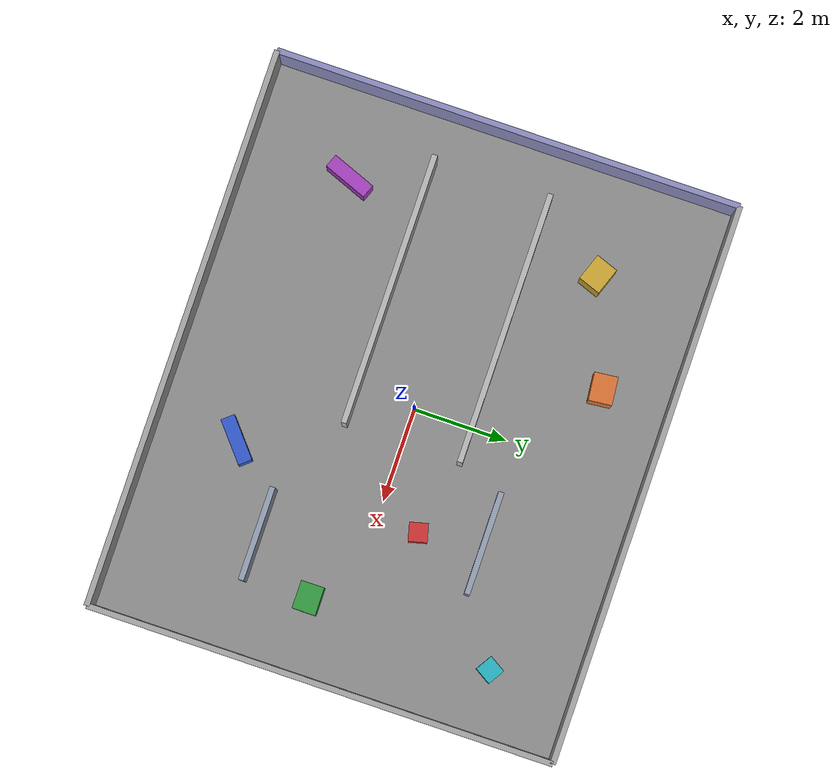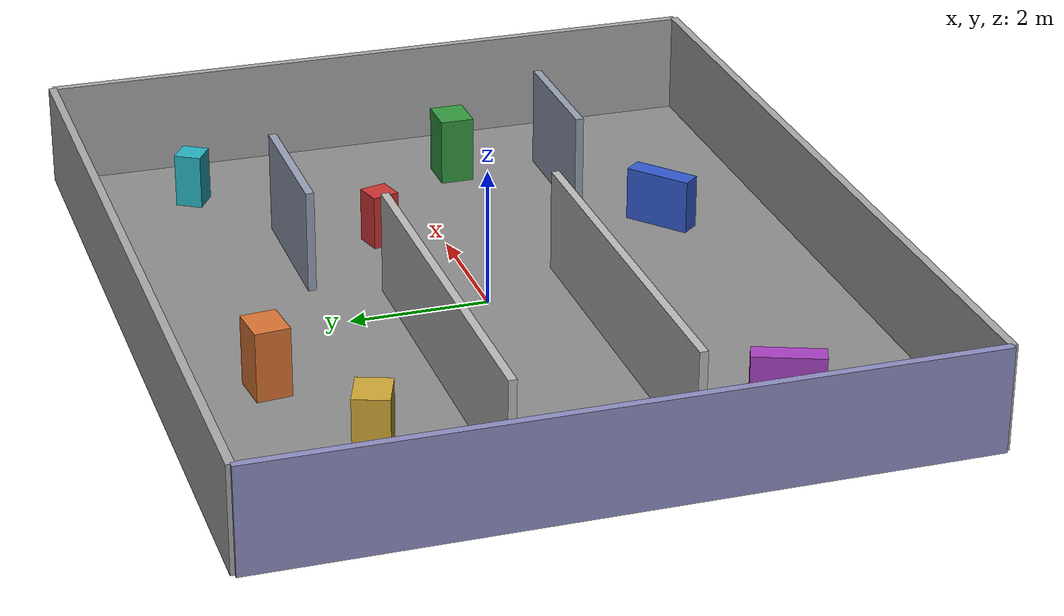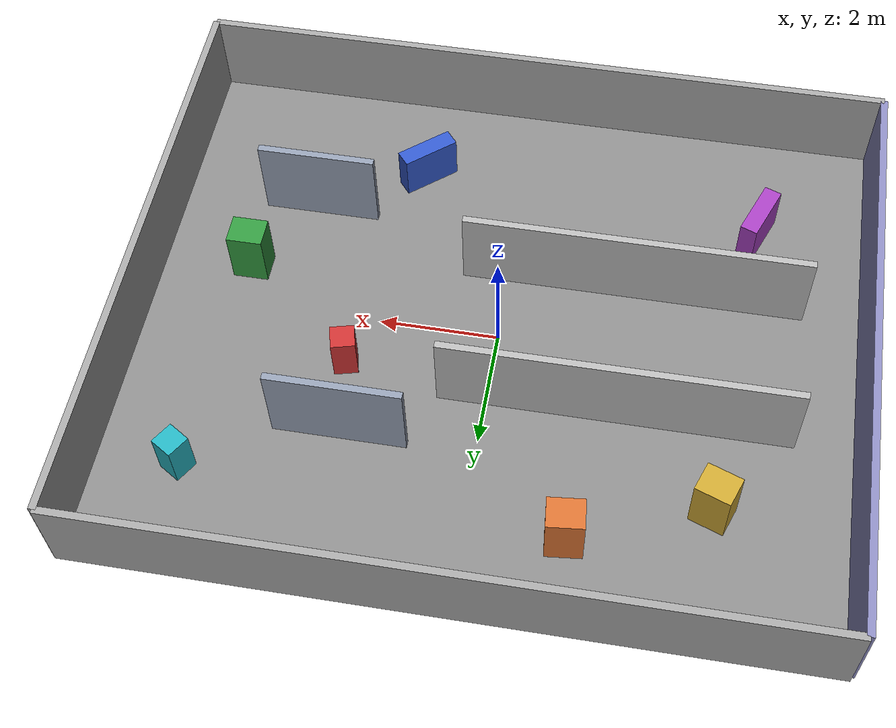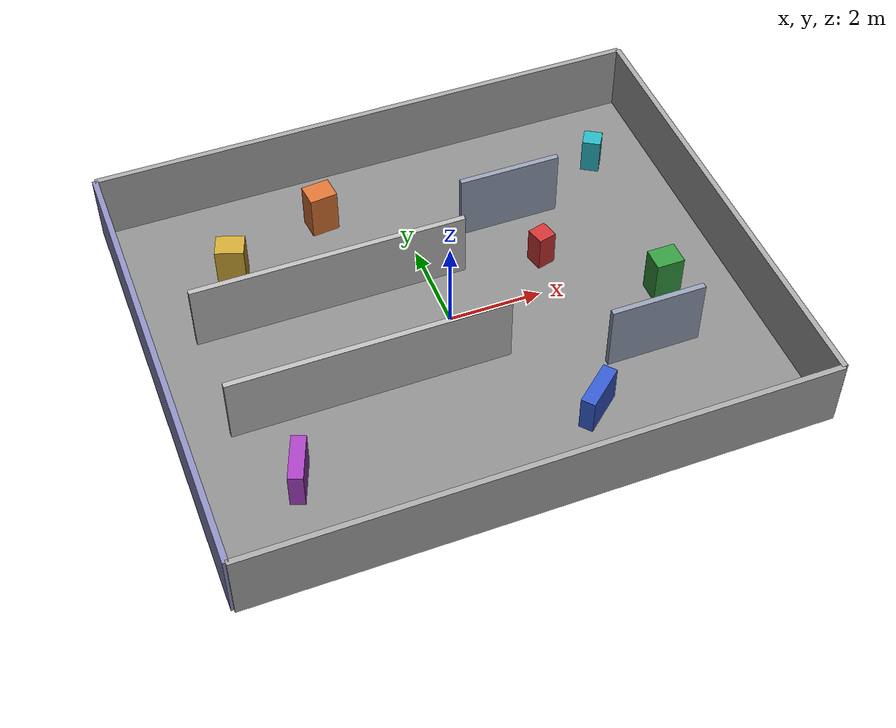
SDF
<?xml version="1.0" ?>
<sdf version="1.6">
  <world name="test_arena_wide_obstacles">
    <!-- Wide Stage 9 final arena: 12 m x 10 m floor, corridor plus open lobby. -->
    <include>
      <uri>model://sun</uri>
    </include>

    <model name="wide_floor_12x10">
      <static>true</static>
      <pose>0 0 -0.005 0 0 0</pose>
      <link name="link">
        <collision name="collision">
          <geometry>
            <box>
              <size>12.0 10.0 0.01</size>
            </box>
          </geometry>
        </collision>
        <visual name="visual">
          <geometry>
            <box>
              <size>12.0 10.0 0.01</size>
            </box>
          </geometry>
          <material>
            <ambient>0.55 0.55 0.55 1</ambient>
            <diffuse>0.55 0.55 0.55 1</diffuse>
          </material>
        </visual>
      </link>
    </model>

    <!-- Perimeter walls. missing_wall_stage9_fixed closes the rear side kept open in the old small arena. -->
    <model name="wall_north">
      <static>true</static>
      <pose>0 5.0 0.75 0 0 0</pose>
      <link name="link">
        <collision name="collision">
          <geometry><box><size>12.0 0.12 1.5</size></box></geometry>
        </collision>
        <visual name="visual">
          <geometry><box><size>12.0 0.12 1.5</size></box></geometry>
          <material><ambient>0.65 0.65 0.65 1</ambient><diffuse>0.65 0.65 0.65 1</diffuse></material>
        </visual>
      </link>
    </model>

    <model name="wall_south">
      <static>true</static>
      <pose>0 -5.0 0.75 0 0 0</pose>
      <link name="link">
        <collision name="collision">
          <geometry><box><size>12.0 0.12 1.5</size></box></geometry>
        </collision>
        <visual name="visual">
          <geometry><box><size>12.0 0.12 1.5</size></box></geometry>
          <material><ambient>0.65 0.65 0.65 1</ambient><diffuse>0.65 0.65 0.65 1</diffuse></material>
        </visual>
      </link>
    </model>

    <model name="wall_east">
      <static>true</static>
      <pose>6.0 0 0.75 0 0 0</pose>
      <link name="link">
        <collision name="collision">
          <geometry><box><size>0.12 10.0 1.5</size></box></geometry>
        </collision>
        <visual name="visual">
          <geometry><box><size>0.12 10.0 1.5</size></box></geometry>
          <material><ambient>0.65 0.65 0.65 1</ambient><diffuse>0.65 0.65 0.65 1</diffuse></material>
        </visual>
      </link>
    </model>

    <model name="missing_wall_stage9_fixed">
      <static>true</static>
      <pose>-6.0 0 0.75 0 0 0</pose>
      <link name="link">
        <collision name="collision">
          <geometry><box><size>0.12 10.0 1.5</size></box></geometry>
        </collision>
        <visual name="visual">
          <geometry><box><size>0.12 10.0 1.5</size></box></geometry>
          <material><ambient>0.55 0.55 0.75 1</ambient><diffuse>0.55 0.55 0.75 1</diffuse></material>
        </visual>
      </link>
    </model>

    <!-- Main corridor: x=-5.0..1.2, y=-1.25..1.25, open toward the lobby. -->
    <model name="wall_corridor_north">
      <static>true</static>
      <pose>-2.1 1.25 0.75 0 0 0</pose>
      <link name="link">
        <collision name="collision">
          <geometry><box><size>5.8 0.12 1.5</size></box></geometry>
        </collision>
        <visual name="visual">
          <geometry><box><size>5.8 0.12 1.5</size></box></geometry>
          <material><ambient>0.72 0.72 0.72 1</ambient><diffuse>0.72 0.72 0.72 1</diffuse></material>
        </visual>
      </link>
    </model>

    <model name="wall_corridor_south">
      <static>true</static>
      <pose>-2.1 -1.25 0.75 0 0 0</pose>
      <link name="link">
        <collision name="collision">
          <geometry><box><size>5.8 0.12 1.5</size></box></geometry>
        </collision>
        <visual name="visual">
          <geometry><box><size>5.8 0.12 1.5</size></box></geometry>
          <material><ambient>0.72 0.72 0.72 1</ambient><diffuse>0.72 0.72 0.72 1</diffuse></material>
        </visual>
      </link>
    </model>

    <!-- Open room/lobby: x=1.2..5.8, y=-4.5..4.5, with partial dividers but no blocked loop. -->
    <model name="wall_lobby_divider_north">
      <static>true</static>
      <pose>2.2 2.25 0.75 0 0 0</pose>
      <link name="link">
        <collision name="collision">
          <geometry><box><size>2.2 0.12 1.5</size></box></geometry>
        </collision>
        <visual name="visual">
          <geometry><box><size>2.2 0.12 1.5</size></box></geometry>
          <material><ambient>0.58 0.62 0.70 1</ambient><diffuse>0.58 0.62 0.70 1</diffuse></material>
        </visual>
      </link>
    </model>

    <model name="wall_lobby_divider_south">
      <static>true</static>
      <pose>3.5 -2.2 0.75 0 0 0</pose>
      <link name="link">
        <collision name="collision">
          <geometry><box><size>2.0 0.12 1.5</size></box></geometry>
        </collision>
        <visual name="visual">
          <geometry><box><size>2.0 0.12 1.5</size></box></geometry>
          <material><ambient>0.58 0.62 0.70 1</ambient><diffuse>0.58 0.62 0.70 1</diffuse></material>
        </visual>
      </link>
    </model>

    <!-- Static box obstacle list: obstacle_box_01 .. obstacle_box_07. -->
    <model name="obstacle_box_01">
      <static>true</static>
      <pose>2.4 0.9 0.4 0 0 0.25</pose>
      <link name="link">
        <collision name="collision"><geometry><box><size>0.4 0.4 0.8</size></box></geometry></collision>
        <visual name="visual"><geometry><box><size>0.4 0.4 0.8</size></box></geometry><material><ambient>0.80 0.20 0.20 1</ambient><diffuse>0.80 0.20 0.20 1</diffuse></material></visual>
      </link>
    </model>

    <model name="obstacle_box_02">
      <static>true</static>
      <pose>4.4 -0.8 0.5 0 0 0</pose>
      <link name="link">
        <collision name="collision"><geometry><box><size>0.6 0.5 1.0</size></box></geometry></collision>
        <visual name="visual"><geometry><box><size>0.6 0.5 1.0</size></box></geometry><material><ambient>0.20 0.60 0.25 1</ambient><diffuse>0.20 0.60 0.25 1</diffuse></material></visual>
      </link>
    </model>

    <model name="obstacle_box_03">
      <static>true</static>
      <pose>1.8 -3.25 0.4 0 0 0.7</pose>
      <link name="link">
        <collision name="collision"><geometry><box><size>1.0 0.3 0.8</size></box></geometry></collision>
        <visual name="visual"><geometry><box><size>1.0 0.3 0.8</size></box></geometry><material><ambient>0.20 0.35 0.80 1</ambient><diffuse>0.20 0.35 0.80 1</diffuse></material></visual>
      </link>
    </model>

    <model name="obstacle_box_04">
      <static>true</static>
      <pose>-3.8 2.7 0.5 0 0 -0.35</pose>
      <link name="link">
        <collision name="collision"><geometry><box><size>0.6 0.5 1.0</size></box></geometry></collision>
        <visual name="visual"><geometry><box><size>0.6 0.5 1.0</size></box></geometry><material><ambient>0.80 0.65 0.20 1</ambient><diffuse>0.80 0.65 0.20 1</diffuse></material></visual>
      </link>
    </model>

    <model name="obstacle_box_05">
      <static>true</static>
      <pose>-4.1 -2.8 0.4 0 0 1.2</pose>
      <link name="link">
        <collision name="collision"><geometry><box><size>1.0 0.3 0.8</size></box></geometry></collision>
        <visual name="visual"><geometry><box><size>1.0 0.3 0.8</size></box></geometry><material><ambient>0.65 0.25 0.75 1</ambient><diffuse>0.65 0.25 0.75 1</diffuse></material></visual>
      </link>
    </model>

    <model name="obstacle_box_06">
      <static>true</static>
      <pose>4.6 3.2 0.4 0 0 -0.55</pose>
      <link name="link">
        <collision name="collision"><geometry><box><size>0.4 0.4 0.8</size></box></geometry></collision>
        <visual name="visual"><geometry><box><size>0.4 0.4 0.8</size></box></geometry><material><ambient>0.15 0.70 0.75 1</ambient><diffuse>0.15 0.70 0.75 1</diffuse></material></visual>
      </link>
    </model>

    <model name="obstacle_box_07">
      <static>true</static>
      <pose>-1.6 3.55 0.5 0 0 0.1</pose>
      <link name="link">
        <collision name="collision"><geometry><box><size>0.6 0.5 1.0</size></box></geometry></collision>
        <visual name="visual"><geometry><box><size>0.6 0.5 1.0</size></box></geometry><material><ambient>0.85 0.45 0.20 1</ambient><diffuse>0.85 0.45 0.20 1</diffuse></material></visual>
      </link>
    </model>
  </world>
</sdf>
